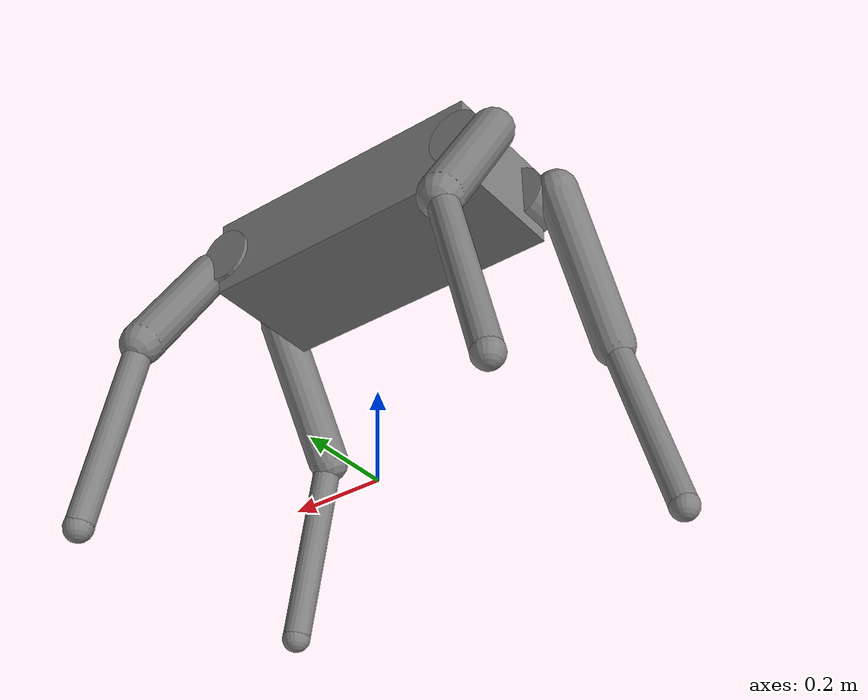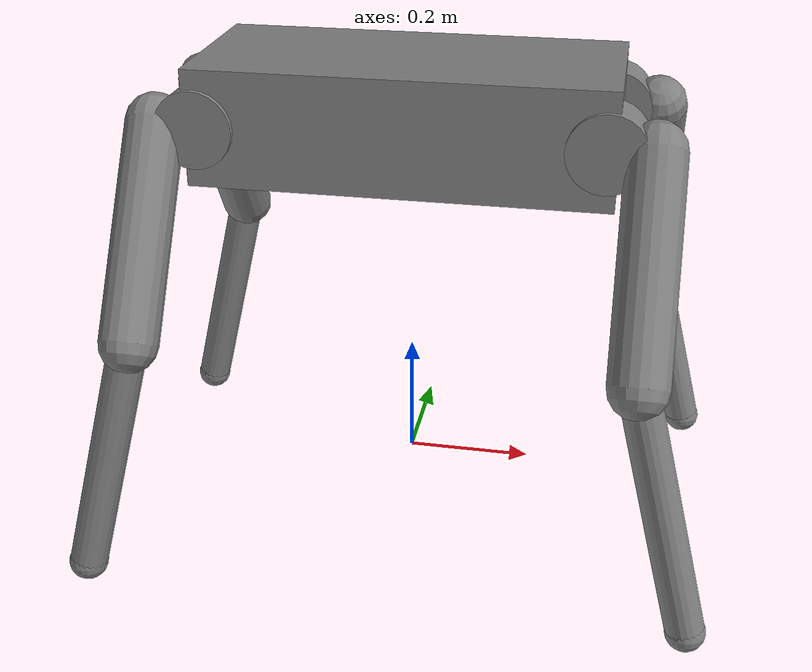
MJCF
<mujoco model="anymal_d">
  <compiler angle="radian" />

  <worldbody>
    <body name="base" pos="0 0 0.6">
      <inertial pos="0 0 0" mass="28.0" diaginertia="0.3 0.7 0.8" />
      <joint name="floating_base_joint" type="free" limited="false" actuatorfrclimited="false" />
      <geom size="0.32 0.14 0.09" type="box" />
      <body name="LF_HIP" pos="0.304 0.109 0.0">
        <inertial pos="0 0 0" mass="2.781" diaginertia="0.005 0.005 0.005" />
        <joint name="LF_HAA" axis="1 0 0" range="-0.7853985 0.6108655"
          limited="true" damping="0.1" armature="0.01" frictionloss="0.2" />
        <geom size="0.06 0.04" quat="0.707107 0.707107 0 0" type="cylinder" />
        <body name="LF_THIGH" pos="0.069 0.006 0.0">
          <inertial pos="0 0.003 -0.14" mass="3.071" diaginertia="0.02 0.02 0.004" />
          <joint name="LF_HFE" axis="0 1 0" range="-9.42477796076938 9.42477796076938"
            limited="true" damping="0.1" armature="0.01" frictionloss="0.2" />
          <geom type="capsule" size="0.045" fromto="0 0 0 0.0 0.1805 -0.285" />
          <body name="LF_SHANK" pos="0.0 0.1805 -0.285">
            <inertial pos="0.05 0 -0.2" mass="0.58" diaginertia="0.008 0.008 0.001" />
            <joint name="LF_KFE" axis="0 1 0" range="-9.42477796076938 9.42477796076938"
              limited="true" damping="0.1" armature="0.01" frictionloss="0.2" />
            <geom type="capsule" size="0.03" fromto="0 0 0 0.1 0.0222 -0.3925" />
            <geom size="0.031" pos="0.1 0.0222 -0.3925" type="sphere" />
            <body name="LF_FOOT" pos="0.1 0.0222 -0.3925" />
          </body>
        </body>
      </body>
      <body name="LH_HIP" pos="-0.304 0.109 0.0">
        <inertial pos="0 0 0" mass="2.781" diaginertia="0.005 0.005 0.005" />
        <joint name="LH_HAA" axis="1 0 0" range="-0.7853985 0.6108655"
          limited="true" damping="0.1" armature="0.01" frictionloss="0.2" />
        <geom size="0.06 0.04" quat="0.707107 0.707107 0 0" type="cylinder" />
        <body name="LH_THIGH" pos="-0.069 0.006 0.0">
          <inertial pos="0 0.003 -0.14" mass="3.071" diaginertia="0.02 0.02 0.004" />
          <joint name="LH_HFE" axis="0 1 0" range="-9.42477796076938 9.42477796076938"
            limited="true" damping="0.1" armature="0.01" frictionloss="0.2" />
          <geom type="capsule" size="0.045" fromto="0 0 0 0.0 0.1805 -0.285" />
          <body name="LH_SHANK" pos="0.0 0.1805 -0.285">
            <inertial pos="-0.05 0 -0.2" mass="0.58" diaginertia="0.008 0.008 0.001" />
            <joint name="LH_KFE" axis="0 1 0" range="-9.42477796076938 9.42477796076938"
              limited="true" damping="0.1" armature="0.01" frictionloss="0.2" />
            <geom type="capsule" size="0.03" fromto="0 0 0 -0.1 0.0223 -0.3925" />
            <geom size="0.031" pos="-0.1 0.0223 -0.3925" type="sphere" />
            <body name="LH_FOOT" pos="-0.1 0.0223 -0.3925" />
          </body>
        </body>
      </body>
      <body name="RF_HIP" pos="0.304 -0.109 0.0">
        <inertial pos="0 0 0" mass="2.781" diaginertia="0.005 0.005 0.005" />
        <joint name="RF_HAA" axis="1 0 0" range="-0.6108655 0.7853985"
          limited="true" damping="0.1" armature="0.01" frictionloss="0.2" />
        <geom size="0.06 0.04" quat="0.707107 0.707107 0 0" type="cylinder" />
        <body name="RF_THIGH" pos="0.069 -0.006 0.0">
          <inertial pos="0 -0.003 -0.14" mass="3.071" diaginertia="0.02 0.02 0.004" />
          <joint name="RF_HFE" axis="0 1 0" range="-9.42477796076938 9.42477796076938"
            limited="true" damping="0.1" armature="0.01" frictionloss="0.2" />
          <geom type="capsule" size="0.045" fromto="0 0 0 0.0 -0.1805 -0.285" />
          <body name="RF_SHANK" pos="0.0 -0.1805 -0.285">
            <inertial pos="0.05 0 -0.2" mass="0.58" diaginertia="0.008 0.008 0.001" />
            <joint name="RF_KFE" axis="0 1 0" range="-9.42477796076938 9.42477796076938"
              limited="true" damping="0.1" armature="0.01" frictionloss="0.2" />
            <geom type="capsule" size="0.03" fromto="0 0 0 0.1 -0.0222 -0.3925" />
            <geom size="0.031" pos="0.1 -0.0222 -0.3925" type="sphere" />
            <body name="RF_FOOT" pos="0.1 -0.0222 -0.3925" />
          </body>
        </body>
      </body>
      <body name="RH_HIP" pos="-0.304 -0.109 0.0">
        <inertial pos="0 0 0" mass="2.781" diaginertia="0.005 0.005 0.005" />
        <joint name="RH_HAA" axis="1 0 0" range="-0.6108655 0.7853985"
          limited="true" damping="0.1" armature="0.01" frictionloss="0.2" />
        <geom size="0.06 0.04" quat="0.707107 0.707107 0 0" type="cylinder" />
        <body name="RH_THIGH" pos="-0.069 -0.006 0.0">
          <inertial pos="0 -0.003 -0.14" mass="3.071" diaginertia="0.02 0.02 0.004" />
          <joint name="RH_HFE" axis="0 1 0" range="-9.42477796076938 9.42477796076938"
            limited="true" damping="0.1" armature="0.01" frictionloss="0.2" />
          <geom type="capsule" size="0.045" fromto="0 0 0 -0.0 -0.1805 -0.285" />
          <body name="RH_SHANK" pos="-0.0 -0.1805 -0.285">
            <inertial pos="-0.05 0 -0.2" mass="0.58" diaginertia="0.008 0.008 0.001" />
            <joint name="RH_KFE" axis="0 1 0" range="-9.42477796076938 9.42477796076938"
              limited="true" damping="0.1" armature="0.01" frictionloss="0.2" />
            <geom type="capsule" size="0.03" fromto="0 0 0 -0.1 -0.0222 -0.3925" />
            <geom size="0.031" pos="-0.1 -0.0222 -0.3925" type="sphere" />
            <body name="RH_FOOT" pos="-0.1 -0.0222 -0.3925" />
          </body>
        </body>
      </body>
    </body>
  </worldbody>

  <actuator>
    <motor name="LF_HAA" joint="LF_HAA" ctrllimited="true" ctrlrange="-80.0 80.0" />
    <motor name="LF_HFE" joint="LF_HFE" ctrllimited="true" ctrlrange="-80.0 80.0" />
    <motor name="LF_KFE" joint="LF_KFE" ctrllimited="true" ctrlrange="-80.0 80.0" />
    <motor name="LH_HAA" joint="LH_HAA" ctrllimited="true" ctrlrange="-80.0 80.0" />
    <motor name="LH_HFE" joint="LH_HFE" ctrllimited="true" ctrlrange="-80.0 80.0" />
    <motor name="LH_KFE" joint="LH_KFE" ctrllimited="true" ctrlrange="-80.0 80.0" />
    <motor name="RF_HAA" joint="RF_HAA" ctrllimited="true" ctrlrange="-80.0 80.0" />
    <motor name="RF_HFE" joint="RF_HFE" ctrllimited="true" ctrlrange="-80.0 80.0" />
    <motor name="RF_KFE" joint="RF_KFE" ctrllimited="true" ctrlrange="-80.0 80.0" />
    <motor name="RH_HAA" joint="RH_HAA" ctrllimited="true" ctrlrange="-80.0 80.0" />
    <motor name="RH_HFE" joint="RH_HFE" ctrllimited="true" ctrlrange="-80.0 80.0" />
    <motor name="RH_KFE" joint="RH_KFE" ctrllimited="true" ctrlrange="-80.0 80.0" />
  </actuator>

</mujoco>
